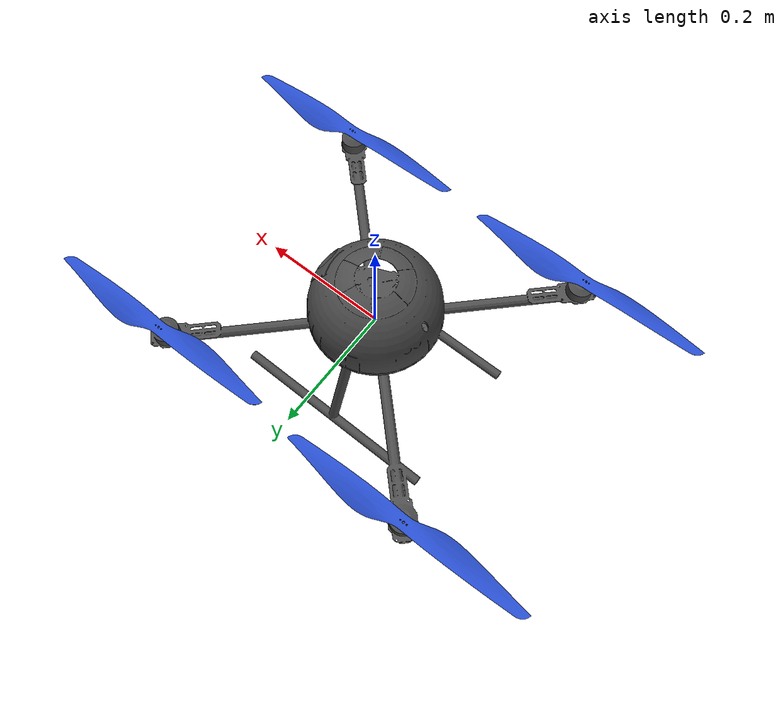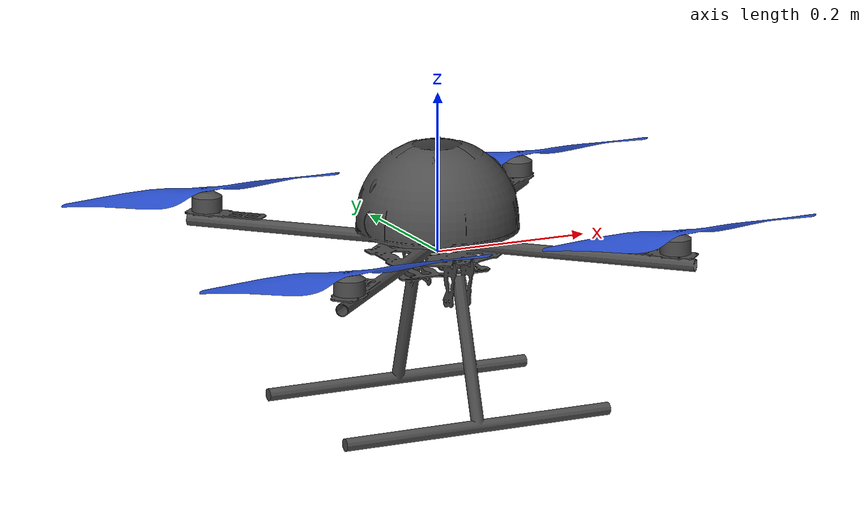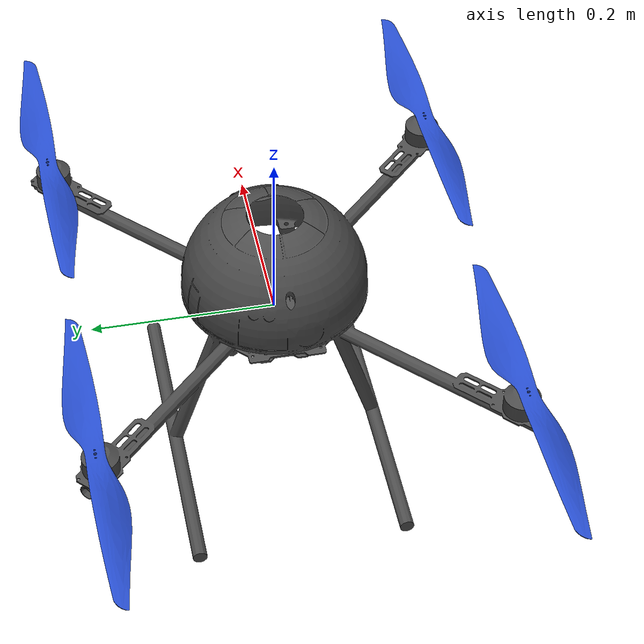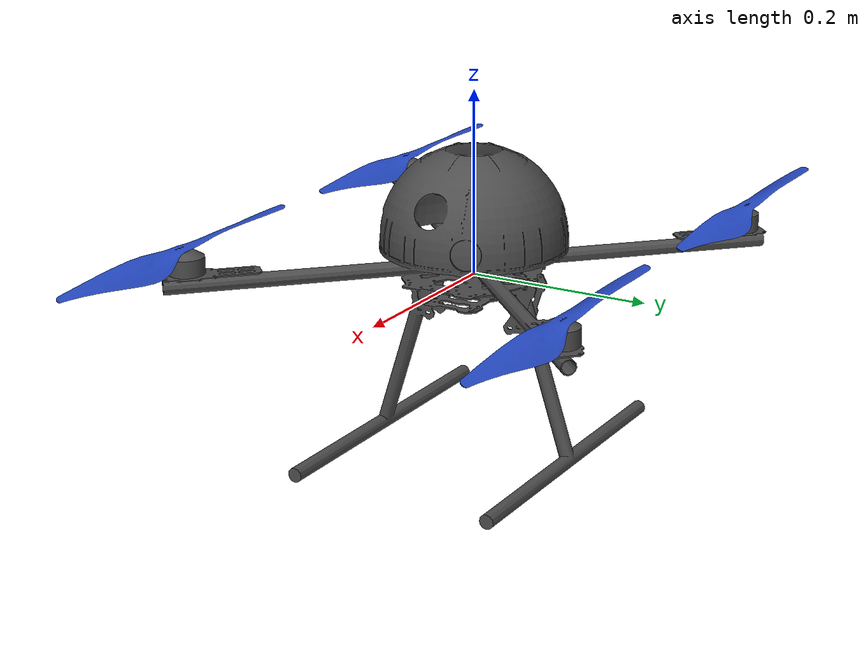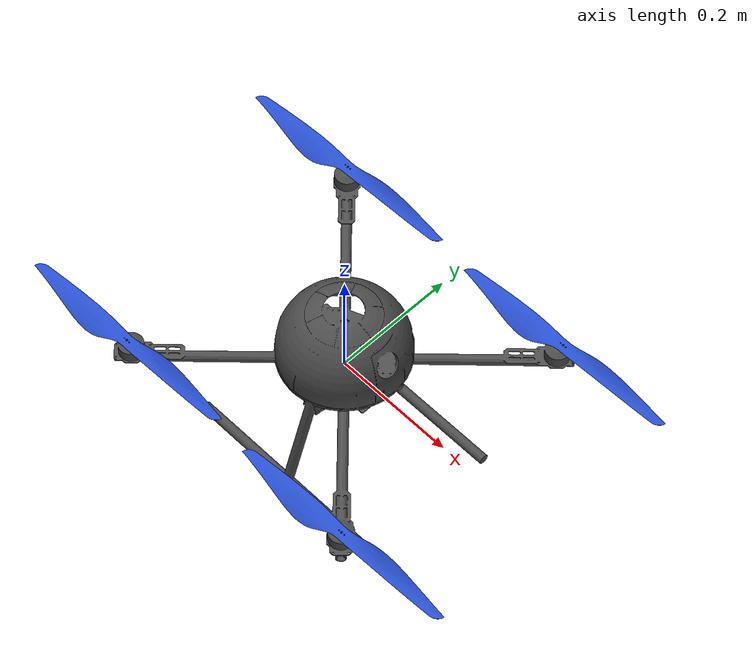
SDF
<?xml version='1.3'?>
<sdf version='1.6'>
  <model name='tarot_650'>
    <static>false</static>

  <!-- LINKS -->
    <link name='base_link'>
      <pose>0 0 0 0 0 0</pose>

      <inertial>
        <pose>0 0 0 0 0 0</pose>
        <mass>2.620</mass>
        <inertia>
          <ixx>0.042467</ixx>
          <iyy>0.043367</iyy>
          <izz>0.063267</izz>

          <ixy>0</ixy>
          <ixz>0</ixz>
          <iyz>0</iyz>
        </inertia>
      </inertial>

      <collision name='base_link_inertia_collision'>
        <pose>0 0 -0.03 0 -0 0</pose>
        <geometry>
          <box>
            <size>0.4796194077712559 0.4796194077712559 0.33</size>
          </box>
        </geometry>
        <surface>
          <contact>
            <ode>
              <min_depth>0.001</min_depth>
              <max_vel>0</max_vel>
            </ode>
          </contact>
          <friction>
            <ode/>
          </friction>
        </surface>
      </collision>
      <visual name='base_link_inertia_visual'>
        <pose>0.241 0.241 -0.2 0 0 3.141590</pose>
        <geometry>
          <mesh>
            <uri>model://tarot_650/meshes/TarotGazebo.STL</uri>
            <scale>0.001 0.001 0.001</scale>
          </mesh>
        </geometry>
        <material>
          <script>
            <name>Gazebo/DarkGrey</name>
            <uri>__default__</uri>
          </script>
        </material>
      </visual>
      <gravity>1</gravity>
      <velocity_decay/>
    </link>

    <link name="rotor_0">
     <gravity>1</gravity>
      <velocity_decay/>
      <pose>0.22 -0.22 0.05 0 0 0</pose>
      <inertial>
          <mass>0.019</mass>
          <inertia>
            <ixx>6.349166666666668e-07</ixx>
            <iyy>4.310783333333334e-05</iyy>
            <izz>4.373958333333334e-05</izz>
          </inertia>
        </inertial>
      <visual name="rotor_0_visual">
        <pose>-0.1905 0.02523 -0.01 1.571 0 0</pose>
        <geometry>
          <mesh>
            <scale>0.001 0.001 0.001</scale>
            <uri>model://tarot_650/meshes/TarotProp.STL</uri>
          </mesh>
        </geometry>
        <material>
          <script>
            <name>Gazebo/Blue</name>
            <uri>file://media/materials/scripts/gazebo.material</uri>
          </script>
        </material>
      </visual>
    </link>

    <link name="rotor_1">
     <gravity>1</gravity>
      <velocity_decay/>
      <pose>-0.22 0.22 0.05 0 0 0</pose>
      <inertial>
          <mass>0.019</mass>
          <inertia>
            <ixx>6.349166666666668e-07</ixx>
            <iyy>4.310783333333334e-05</iyy>
            <izz>4.373958333333334e-05</izz>
          </inertia>
        </inertial>
      <visual name="rotor_1_visual">
        <pose>-0.1905 0.02523 -0.01 1.571 0 0</pose>
        <geometry>
          <mesh>
            <scale>0.001 0.001 0.001</scale>
            <uri>model://tarot_650/meshes/TarotProp.STL</uri>
          </mesh>
        </geometry>
        <material>
          <script>
            <name>Gazebo/Blue</name>
            <uri>file://media/materials/scripts/gazebo.material</uri>
          </script>
        </material>
      </visual>
    </link>

    <link name="rotor_2">
     <gravity>1</gravity>
      <velocity_decay/>
      <pose>0.22 0.22 0.05 0 0 0</pose>
      <inertial>
          <mass>0.019</mass>
          <inertia>
            <ixx>6.349166666666668e-07</ixx>
            <iyy>4.310783333333334e-05</iyy>
            <izz>4.373958333333334e-05</izz>
          </inertia>
        </inertial>
      <visual name="rotor_2_visual">
        <pose>-0.1905 0.02523 -0.01 1.571 0 0</pose>
        <geometry>
          <mesh>
            <scale>0.001 0.001 0.001</scale>
            <uri>model://tarot_650/meshes/TarotProp.STL</uri>
          </mesh>
        </geometry>
        <material>
          <script>
            <name>Gazebo/Blue</name>
            <uri>file://media/materials/scripts/gazebo.material</uri>
          </script>
        </material>
      </visual>
    </link>

    <link name="rotor_3">
     <gravity>1</gravity>
      <velocity_decay/>
      <pose>-0.22 -0.22 0.05 0 0 0</pose>
      <inertial>
          <mass>0.019</mass>
          <inertia>
            <ixx>6.349166666666668e-07</ixx>
            <iyy>4.310783333333334e-05</iyy>
            <izz>4.373958333333334e-05</izz>
          </inertia>
        </inertial>
      <visual name="rotor_3_visual">
        <pose>-0.1905 0.02523 -0.01 1.571 0 0</pose>
        <geometry>
          <mesh>
            <scale>0.001 0.001 0.001</scale>
            <uri>model://tarot_650/meshes/TarotProp.STL</uri>
          </mesh>
        </geometry>
        <material>
          <script>
            <name>Gazebo/Blue</name>
            <uri>file://media/materials/scripts/gazebo.material</uri>
          </script>
        </material>
      </visual>
    </link>

<!-- JOINTS -->

    <joint name='/imu_joint' type='revolute'>
      <child>/imu_link</child>
      <parent>base_link</parent>
      <axis>
        <xyz>1 0 0</xyz>
        <limit>
          <lower>0</lower>
          <upper>0</upper>
          <effort>0</effort>
          <velocity>0</velocity>
        </limit>
        <dynamics>
          <spring_reference>0</spring_reference>
          <spring_stiffness>0</spring_stiffness>
        </dynamics>
        <use_parent_model_frame>1</use_parent_model_frame>
      </axis>
    </joint>

    <joint name='rotor_0_joint' type='revolute'>
      <child>rotor_0</child>
      <parent>base_link</parent>
      <axis>
        <xyz>0 0 1</xyz>
        <limit>
          <lower>-1e+16</lower>
          <upper>1e+16</upper>
        </limit>
        <dynamics>
          <spring_reference>0</spring_reference>
          <spring_stiffness>0</spring_stiffness>
        </dynamics>
        <use_parent_model_frame>1</use_parent_model_frame>
      </axis>
    </joint>

    <joint name='rotor_1_joint' type='revolute'>
      <child>rotor_1</child>
      <parent>base_link</parent>
      <axis>
        <xyz>0 0 1</xyz>
        <limit>
          <lower>-1e+16</lower>
          <upper>1e+16</upper>
        </limit>
        <dynamics>
          <spring_reference>0</spring_reference>
          <spring_stiffness>0</spring_stiffness>
        </dynamics>
        <use_parent_model_frame>1</use_parent_model_frame>
      </axis>
    </joint>

    <joint name='rotor_2_joint' type='revolute'>
      <child>rotor_2</child>
      <parent>base_link</parent>
      <axis>
        <xyz>0 0 1</xyz>
        <limit>
          <lower>-1e+16</lower>
          <upper>1e+16</upper>
        </limit>
        <dynamics>
          <spring_reference>0</spring_reference>
          <spring_stiffness>0</spring_stiffness>
        </dynamics>
        <use_parent_model_frame>1</use_parent_model_frame>
      </axis>
    </joint>

    <joint name='rotor_3_joint' type='revolute'>
      <child>rotor_3</child>
      <parent>base_link</parent>
      <axis>
        <xyz>0 0 1</xyz>
        <limit>
          <lower>-1e+16</lower>
          <upper>1e+16</upper>
        </limit>
        <dynamics>
          <spring_reference>0</spring_reference>
          <spring_stiffness>0</spring_stiffness>
        </dynamics>
        <use_parent_model_frame>1</use_parent_model_frame>
      </axis>
    </joint>

<!-- PLUGINS -->

    <plugin
      filename="libpx4_gz_sim.so"
      name="px4_interface">
    </plugin>

    <plugin name='front_right_motor_model' filename='libpx4_motor_model.so'>
      <robotNamespace/>
      <jointName>rotor_0_joint</jointName>
      <linkName>rotor_0</linkName>
      <motorNumber>0</motorNumber>

      <turningDirection>ccw</turningDirection>
      <maxRotVelocity>883</maxRotVelocity>
      <motorConstant>2.5911e-05</motorConstant>
      <momentConstant>0.0166605</momentConstant>

      <timeConstantUp>0.0125</timeConstantUp>
      <timeConstantDown>0.025</timeConstantDown>
      <rotorDragCoefficient>0.000806428</rotorDragCoefficient>
      <rollingMomentCoefficient>1e-06</rollingMomentCoefficient>
      <rotorVelocitySlowdownSim>10</rotorVelocitySlowdownSim>
    </plugin>

    <plugin name='back_left_motor_model' filename='libpx4_motor_model.so'>
      <robotNamespace/>
      <jointName>rotor_1_joint</jointName>
      <linkName>rotor_1</linkName>
      <motorNumber>1</motorNumber>

      <turningDirection>ccw</turningDirection>
      <maxRotVelocity>883</maxRotVelocity>
      <motorConstant>2.5911e-05</motorConstant>
      <momentConstant>0.0166605</momentConstant>

      <timeConstantUp>0.0125</timeConstantUp>
      <timeConstantDown>0.025</timeConstantDown>
      <rotorDragCoefficient>0.000806428</rotorDragCoefficient>
      <rollingMomentCoefficient>1e-06</rollingMomentCoefficient>
      <rotorVelocitySlowdownSim>10</rotorVelocitySlowdownSim>
    </plugin>

    <plugin name='front_left_motor_model' filename='libpx4_motor_model.so'>
      <robotNamespace/>
      <jointName>rotor_2_joint</jointName>
      <linkName>rotor_2</linkName>
      <motorNumber>2</motorNumber>

      <turningDirection>cw</turningDirection>
      <maxRotVelocity>883</maxRotVelocity>
      <motorConstant>2.5911e-05</motorConstant>
      <momentConstant>0.0166605</momentConstant>

      <timeConstantUp>0.0125</timeConstantUp>
      <timeConstantDown>0.025</timeConstantDown>
      <rotorDragCoefficient>0.000806428</rotorDragCoefficient>
      <rollingMomentCoefficient>1e-06</rollingMomentCoefficient>
      <rotorVelocitySlowdownSim>10</rotorVelocitySlowdownSim>
    </plugin>

    <plugin name='back_right_motor_model' filename='libpx4_motor_model.so'>
      <robotNamespace/>
      <jointName>rotor_3_joint</jointName>
      <linkName>rotor_3</linkName>
      <motorNumber>3</motorNumber>

      <turningDirection>cw</turningDirection>
      <maxRotVelocity>883</maxRotVelocity>
      <motorConstant>2.5911e-05</motorConstant>
      <momentConstant>0.0166605</momentConstant>

      <timeConstantUp>0.0125</timeConstantUp>
      <timeConstantDown>0.025</timeConstantDown>
      <rotorDragCoefficient>0.000806428</rotorDragCoefficient>
      <rollingMomentCoefficient>1e-06</rollingMomentCoefficient>
      <rotorVelocitySlowdownSim>10</rotorVelocitySlowdownSim>
    </plugin>

  </model>
</sdf>
